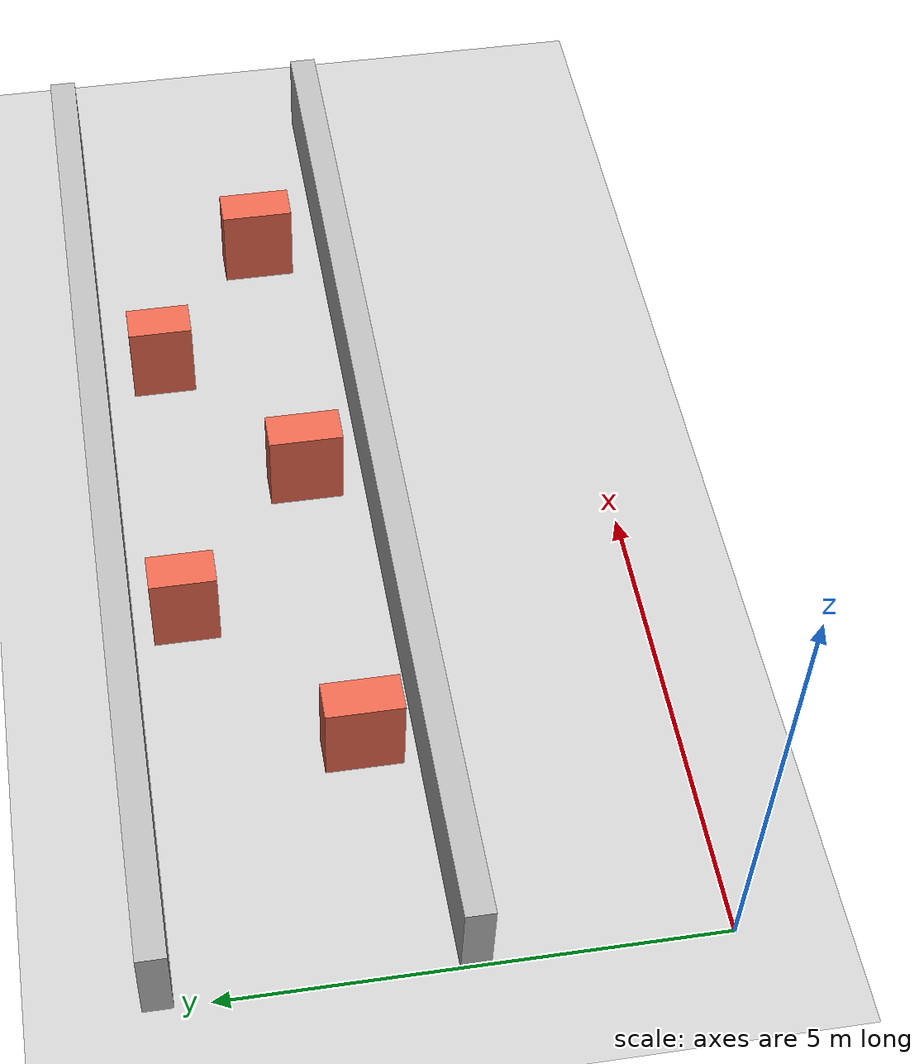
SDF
<sdf version="1.6">
 <world name="tb3_corridor_simple">
  <physics type="ode"><max_step_size>0.001</max_step_size><real_time_factor>1</real_time_factor></physics>
  <include><uri>model://sun</uri></include>
  <include><uri>model://ground_plane</uri></include>
  <model name="top_wall">
   <static>true</static>
   <pose>6.0 5.5 0.5 0 0 0</pose>
   <link name="link">
    <collision name="c"><geometry><box><size>12.0 0.3 1.0</size></box></geometry></collision>
    <visual name="v"><geometry><box><size>12.0 0.3 1.0</size></box></geometry></visual>
   </link>
  </model>
  <model name="bottom_wall">
   <static>true</static>
   <pose>6.0 2.5 0.5 0 0 0</pose>
   <link name="link">
    <collision name="c"><geometry><box><size>12.0 0.3 1.0</size></box></geometry></collision>
    <visual name="v"><geometry><box><size>12.0 0.3 1.0</size></box></geometry></visual>
   </link>
  </model>
  <model name="obs1">
   <static>true</static>
   <pose>2.5 3.2 0.5 0 0 0</pose>
   <link name="link">
    <collision name="c"><geometry><box><size>0.4 0.8 1.0</size></box></geometry></collision>
    <visual name="v">
     <geometry><box><size>0.4 0.8 1.0</size></box></geometry>
     <material><ambient>0.9 0.4 0.3 1</ambient></material>
    </visual>
   </link>
  </model>
  <model name="obs2">
   <static>true</static>
   <pose>4.3 4.8 0.5 0 0 0</pose>
   <link name="link">
    <collision name="c"><geometry><box><size>0.4 0.7 1.0</size></box></geometry></collision>
    <visual name="v">
     <geometry><box><size>0.4 0.7 1.0</size></box></geometry>
     <material><ambient>0.9 0.4 0.3 1</ambient></material>
    </visual>
   </link>
  </model>
  <model name="obs3">
   <static>true</static>
   <pose>6.0 3.3 0.5 0 0 0</pose>
   <link name="link">
    <collision name="c"><geometry><box><size>0.4 0.8 1.0</size></box></geometry></collision>
    <visual name="v">
     <geometry><box><size>0.4 0.8 1.0</size></box></geometry>
     <material><ambient>0.9 0.4 0.3 1</ambient></material>
    </visual>
   </link>
  </model>
  <model name="obs4">
   <static>true</static>
   <pose>7.8 4.7 0.5 0 0 0</pose>
   <link name="link">
    <collision name="c"><geometry><box><size>0.4 0.7 1.0</size></box></geometry></collision>
    <visual name="v">
     <geometry><box><size>0.4 0.7 1.0</size></box></geometry>
     <material><ambient>0.9 0.4 0.3 1</ambient></material>
    </visual>
   </link>
  </model>
  <model name="obs5">
   <static>true</static>
   <pose>9.5 3.4 0.5 0 0 0</pose>
   <link name="link">
    <collision name="c"><geometry><box><size>0.4 0.8 1.0</size></box></geometry></collision>
    <visual name="v">
     <geometry><box><size>0.4 0.8 1.0</size></box></geometry>
     <material><ambient>0.9 0.4 0.3 1</ambient></material>
    </visual>
   </link>
  </model>
 </world>
</sdf>
